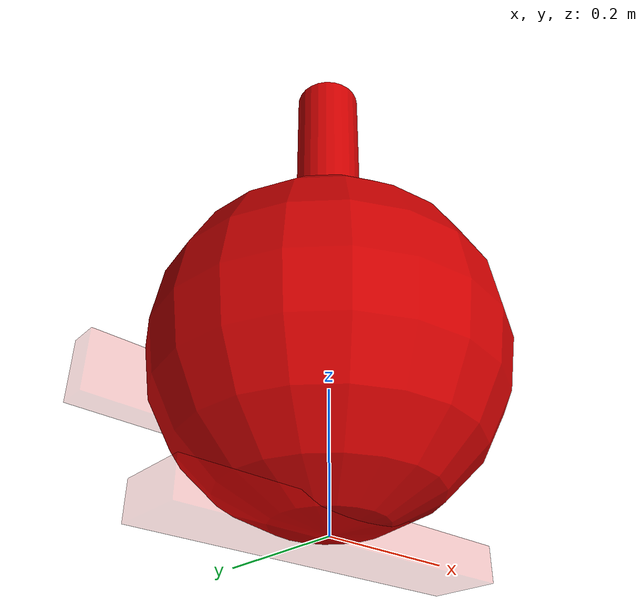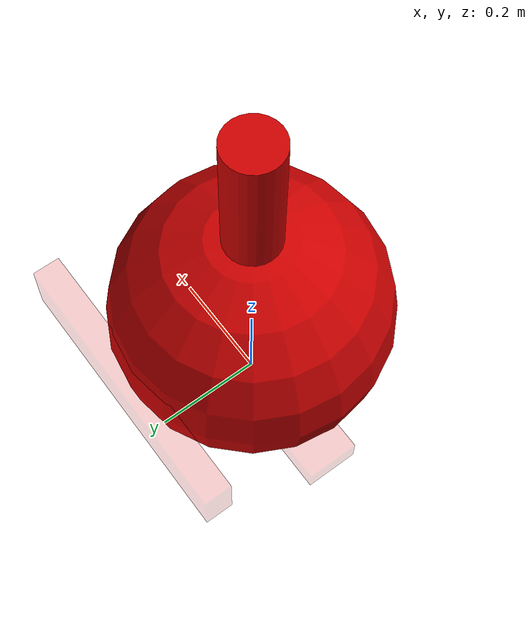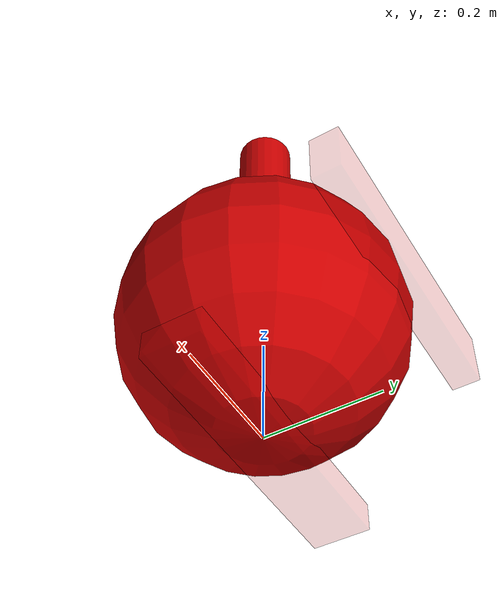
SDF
<sdf version="1.10">
    <model name="motor_module_1">
      <pose>0 0 0 0 0 0</pose>

        <link name="motor_module_1_base">
          <pose>0.0 0.0 0.0 0 0 0</pose>
          <inertial>
            <inertia>
              <ixx>2.501</ixx>
              <ixy>0</ixy>
              <ixz>0</ixz>
              <iyy>2.501</iyy>
              <iyz>0</iyz>
              <izz>5</izz>
            </inertia>
            <mass>0.1</mass>
          </inertial>
          <collision name="base_collision">
            <pose>0.0 0.0 0.0 0 0 0</pose>
            <geometry>
              <box>
                <size>0.5 0.5 0.01</size>
              </box>
            </geometry>
          </collision>
        </link>

        <link name="motor_module_1_pitch_rotor">
          <pose>0.0 0.0 0 0 0 0</pose>
          <inertial>
            <inertia>
              <ixx>0.032</ixx>
              <ixy>0</ixy>
              <ixz>0</ixz>
              <iyy>0.032</iyy>
              <iyz>0</iyz>
              <izz>0.00012</izz>
            </inertia>
            <mass>0.1</mass>
          </inertial>
          <visual name="visual">
            <geometry>
              <box>
                <size>0.5 0.1 0.05</size>
              </box>
            </geometry>
            <material>
              <ambient>0.2 0.8 0.2 1</ambient>
              <diffuse>0.8 0 0 1</diffuse>
            </material>
            <transparency>0.9</transparency>
          </visual>
          <collision name="collision">
            <geometry>
              <box>
                <size>0.5 0.1 0.05</size>
              </box>
            </geometry>
          </collision>
        </link>

        <link name="motor_module_1_yaw_rotor">
          <pose>0 0.25 0.25 1.5708 0 0</pose>
            <inertial>
              <mass>0.1</mass>
              <inertia>
                <ixx>0.05</ixx>
                <iyy>0.05</iyy>
                <izz>0.05</izz>
                <ixy>0</ixy><ixz>0</ixz><iyz>0</iyz>
              </inertia>
            </inertial>
          <visual name="visual">
          <geometry>
            <box>
              <size>0.5 0.1 0.05</size>
            </box>
          </geometry>
          <material>
            <ambient>0.2 0.8 0.2 1</ambient>
              <diffuse>0.8 0 0 1</diffuse>
            </material>
            <transparency>0.9</transparency>
          </visual>
          <collision name="collision_2">
            <geometry>
              <box>
                <size>0.5 0.1 0.05</size>
              </box>
            </geometry>
          </collision>
        </link>

        <link name="motor_module_1_thruster">
          <pose>0 0 0.25 0 0 0</pose>
            <inertial>
              <mass>0.1</mass>
              <inertia>
                <ixx>0.05</ixx>
                <iyy>0.05</iyy>
                <izz>0.05</izz>
                <ixy>0</ixy><ixz>0</ixz><iyz>0</iyz>
              </inertia>
            </inertial>
          <visual name="visual">
          <geometry>
            <sphere>
              <radius>0.25</radius>
            </sphere>
          </geometry>
          <material>
            <ambient>0.2 0.8 0.2 1</ambient>
            <diffuse>0.8 0 0 1</diffuse>
          </material>
          </visual>
          <collision name="collision_3">
            <geometry>
              <sphere>
                <radius>0.25</radius>
              </sphere>
            </geometry>
          </collision>
        </link>

        <link name="motor_module_1_thruster_direction_marker">
          <pose>0 0 0.5 0 0 0</pose>
            <inertial>
              <mass>0.1</mass>
              <inertia>
                <ixx>0.05</ixx>
                <iyy>0.05</iyy>
                <izz>0.05</izz>
                <ixy>0</ixy><ixz>0</ixz><iyz>0</iyz>
              </inertia>
            </inertial>
          <visual name="visual">
            <geometry>
              <cylinder>
                <radius>0.05</radius>
                <length>0.5</length>
              </cylinder>
            </geometry>
            <material>
              <ambient>0.2 0.8 0.2 1</ambient>
              <diffuse>0.8 0 0 1</diffuse>
            </material>
          </visual>
          <collision name="collision_4">
            <geometry>
              <cylinder>
                <radius>0.05</radius>
                <length>0.5</length>
              </cylinder>
            </geometry>
          </collision>
        </link>

        <joint name="motor_module_1_joint_1" type="revolute">
          <pose>0 0 0 0 0 0</pose>
          <parent>motor_module_1_base</parent>
          <child>motor_module_1_pitch_rotor</child>
          <axis>
            <xyz>0 0 1</xyz>
          </axis>
        </joint>

        <joint name="motor_module_1_joint_2" type="revolute">
          <pose>0 0 0 0 0 0</pose>
          <parent>motor_module_1_pitch_rotor</parent>
          <child>motor_module_1_yaw_rotor</child>
          <axis>
            <xyz> 0 0 1</xyz>
          </axis>
        </joint>

        <joint name="motor_module_1_joint_3" type="revolute">
          <pose>0 0 0 0 0 0</pose>
          <parent>motor_module_1_yaw_rotor</parent>
          <child>motor_module_1_thruster</child>
                    <axis>
      <xyz>0 0 -1</xyz>
    </axis>
        </joint>

        <joint name="motor_module_1_joint_4" type="revolute">
          <pose>0 0 0 0 0 0</pose>
          <parent>motor_module_1_thruster</parent>
          <child>motor_module_1_thruster_direction_marker</child>
          <axis>
      <xyz>0 0 -1</xyz>
    </axis>

        </joint>

        <plugin
          filename="gz-sim-joint-position-controller-system"
          name="gz::sim::systems::JointPositionController">
          <joint_name>motor_module_1_joint_1</joint_name>
          <topic>motor_module_1_joint_1</topic>
          <p_gain>1</p_gain>
          <i_gain>0.1</i_gain>
          <d_gain>0.5</d_gain>
          <i_max>1</i_max>
          <i_min>-1</i_min>
          <cmd_max>1000</cmd_max>
          <cmd_min>-1000</cmd_min>
        </plugin>

        <plugin
          filename="gz-sim-joint-position-controller-system"
          name="gz::sim::systems::JointPositionController">
          <joint_name>motor_module_1_joint_2</joint_name>
          <topic>motor_module_1_joint_2</topic>
          <p_gain>1</p_gain>
          <i_gain>0.1</i_gain>
          <d_gain>0.5</d_gain>
          <i_max>1</i_max>
          <i_min>-1</i_min>
          <cmd_max>1000</cmd_max>
          <cmd_min>-1000</cmd_min>
        </plugin>

<plugin
  filename="gz-sim-thruster-system"
  name="gz::sim::systems::Thruster">
  <namespace>motor_1_thruster</namespace>  <!-- Change number for each module -->
  <joint_name>motor_module_1_joint_4</joint_name>  <!-- Change number for each module -->
  <use_angvel_cmd>false</use_angvel_cmd>
  <input_topic>/model/motor_1_thruster/joint/motor_module_1_joint_4/cmd_thrust</input_topic>  <!-- ADD THIS LINE -->
  <thrust_coefficient>1</thrust_coefficient>
  <fluid_density>1000</fluid_density>
  <propeller_diameter>0.2</propeller_diameter>
</plugin>
    </model>
  </sdf>
